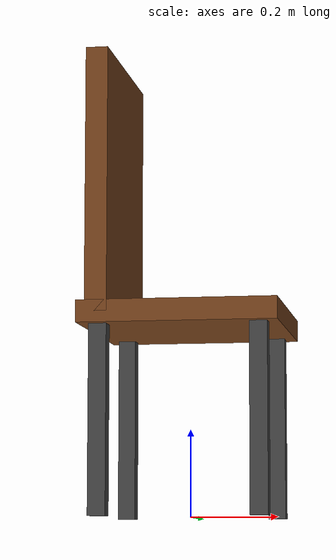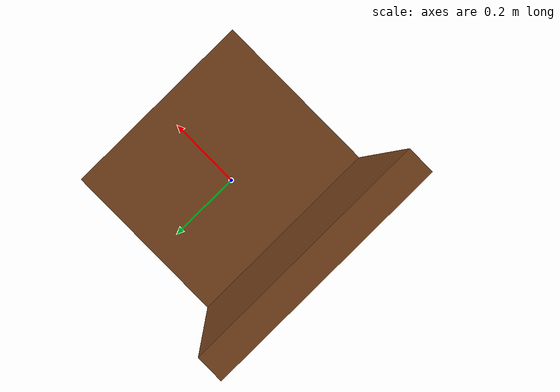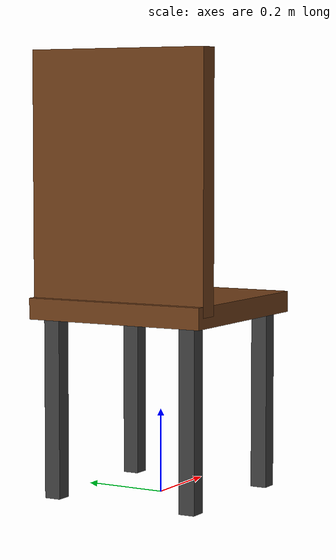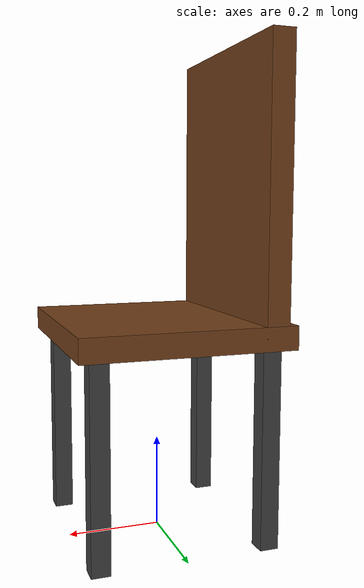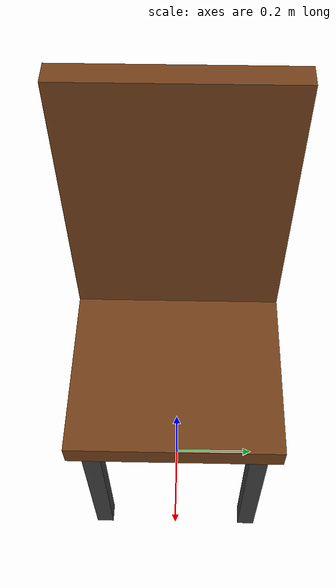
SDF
<?xml version="1.0"?>

<sdf version="1.7">

<model name="restaurant_chair">

<static>true</static>

<link name="chair">

  <!-- Seat -->

  <collision name="seat_collision">
    <pose>0 0 0.45 0 0 0</pose>
    <geometry>
      <box>
        <size>0.45 0.45 0.05</size>
      </box>
    </geometry>
  </collision>

  <visual name="seat_visual">
    <pose>0 0 0.45 0 0 0</pose>
    <geometry>
      <box>
        <size>0.45 0.45 0.05</size>
      </box>
    </geometry>
    <material>
      <ambient>0.45 0.25 0.10 1</ambient>
      <diffuse>0.45 0.25 0.10 1</diffuse>
    </material>
  </visual>

  <!-- Back -->

  <collision name="back_collision">
    <pose>-0.18 0 0.75 0 0 0</pose>
    <geometry>
      <box>
        <size>0.05 0.45 0.60</size>
      </box>
    </geometry>
  </collision>

  <visual name="back_visual">
    <pose>-0.18 0 0.75 0 0 0</pose>
    <geometry>
      <box>
        <size>0.05 0.45 0.60</size>
      </box>
    </geometry>
    <material>
      <ambient>0.45 0.25 0.10 1</ambient>
      <diffuse>0.45 0.25 0.10 1</diffuse>
    </material>
  </visual>

  <!-- Legs -->

  <!-- Front Left -->

  <visual name="leg1">
    <pose>0.18 0.18 0.225 0 0 0</pose>
    <geometry>
      <box>
        <size>0.04 0.04 0.45</size>
      </box>
    </geometry>
    <material>
      <ambient>0.25 0.25 0.25 1</ambient>
      <diffuse>0.25 0.25 0.25 1</diffuse>
    </material>
  </visual>

  <collision name="leg1_collision">
    <pose>0.18 0.18 0.225 0 0 0</pose>
    <geometry>
      <box>
        <size>0.04 0.04 0.45</size>
      </box>
    </geometry>
  </collision>

  <!-- Front Right -->

  <visual name="leg2">
    <pose>0.18 -0.18 0.225 0 0 0</pose>
    <geometry>
      <box>
        <size>0.04 0.04 0.45</size>
      </box>
    </geometry>
    <material>
      <ambient>0.25 0.25 0.25 1</ambient>
      <diffuse>0.25 0.25 0.25 1</diffuse>
    </material>
  </visual>

  <collision name="leg2_collision">
    <pose>0.18 -0.18 0.225 0 0 0</pose>
    <geometry>
      <box>
        <size>0.04 0.04 0.45</size>
      </box>
    </geometry>
  </collision>

  <!-- Rear Left -->

  <visual name="leg3">
    <pose>-0.18 0.18 0.225 0 0 0</pose>
    <geometry>
      <box>
        <size>0.04 0.04 0.45</size>
      </box>
    </geometry>
    <material>
      <ambient>0.25 0.25 0.25 1</ambient>
      <diffuse>0.25 0.25 0.25 1</diffuse>
    </material>
  </visual>

  <collision name="leg3_collision">
    <pose>-0.18 0.18 0.225 0 0 0</pose>
    <geometry>
      <box>
        <size>0.04 0.04 0.45</size>
      </box>
    </geometry>
  </collision>

  <!-- Rear Right -->

  <visual name="leg4">
    <pose>-0.18 -0.18 0.225 0 0 0</pose>
    <geometry>
      <box>
        <size>0.04 0.04 0.45</size>
      </box>
    </geometry>
    <material>
      <ambient>0.25 0.25 0.25 1</ambient>
      <diffuse>0.25 0.25 0.25 1</diffuse>
    </material>
  </visual>

  <collision name="leg4_collision">
    <pose>-0.18 -0.18 0.225 0 0 0</pose>
    <geometry>
      <box>
        <size>0.04 0.04 0.45</size>
      </box>
    </geometry>
  </collision>

</link>

</model>

</sdf>
